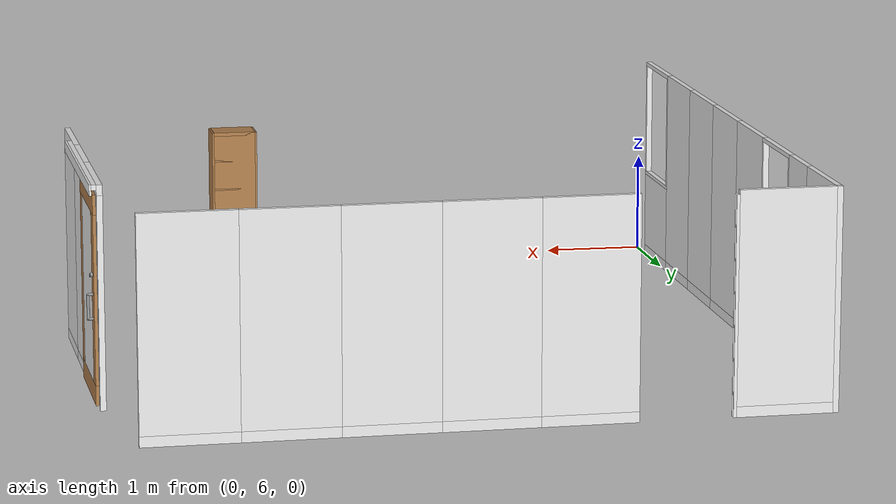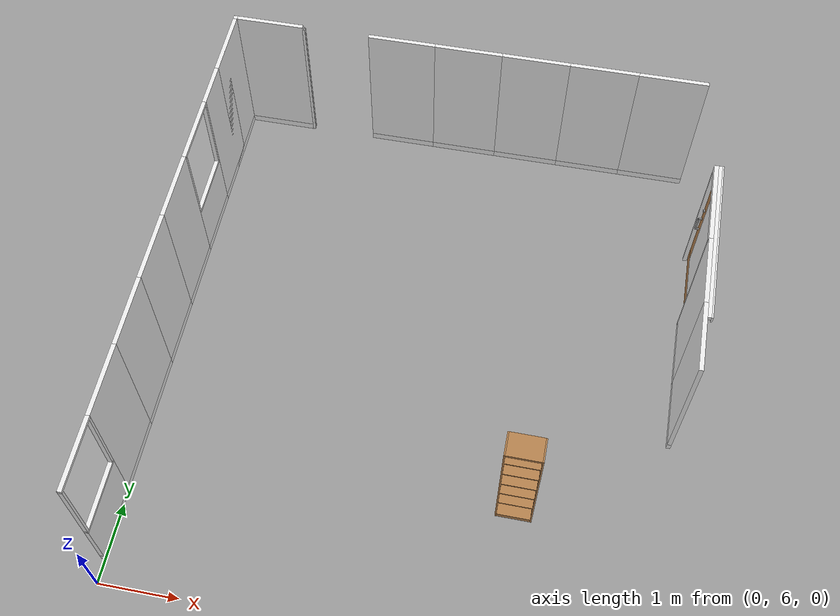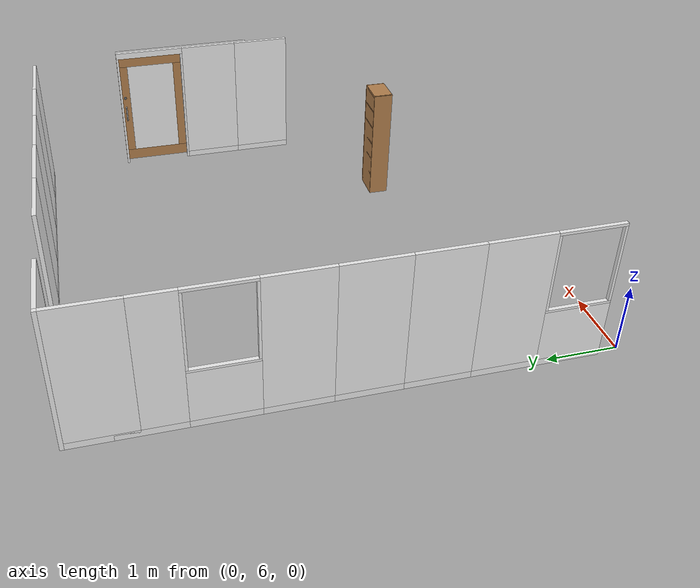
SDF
<sdf version="1.4">
 <world name="apartment">
  <model name="wall_x00y08">
   <link name="link">
    <inertial>
     <mass>50</mass>
     <inertia><ixx>1</ixx><ixy>0</ixy><ixz>0</ixz><iyy>1</iyy><iyz>0</iyz><izz>1</izz></inertia>
    </inertial>
    <visual name="bottom_frame">
     <pose>0 0 0.05 0 -0 0</pose>
     <geometry><box><size>0.055 0.9 0.1</size></box></geometry>
     <material>
      <script><uri>model://base_materials/color/scripts</uri><name>hsr_color/white</name></script>
     </material>
    </visual>
    <collision name="collision_bottom_frame">
     <pose>0 0 0.05 0 -0 0</pose>
     <geometry><box><size>0.055 0.9 0.1</size></box></geometry>
    </collision>
    <visual name="wall">
     <pose>0 0 0.4875 0 -0 0</pose>
     <geometry><box><size>0.055 0.9 0.775</size></box></geometry>
     <material>
      <script>
       <uri>model://base_materials/wall/scripts</uri>
       <uri>model://base_materials/wall/textures</uri>
       <name>wall/white_noise</name>
      </script>
     </material>
    </visual>
    <collision name="collision_wall">
     <pose>0 0 0.4875 0 -0 0</pose>
     <geometry><box><size>0.055 0.9 0.775</size></box></geometry>
    </collision>
    <visual name="center_frame">
     <pose>0 0 0.8925 0 -0 0</pose>
     <geometry><box><size>0.055 0.9 0.035</size></box></geometry>
     <material>
      <script><uri>model://base_materials/color/scripts</uri><name>hsr_color/white</name></script>
     </material>
    </visual>
    <collision name="collision_center_frame">
     <pose>0 0 0.8925 0 -0 0</pose>
     <geometry><box><size>0.055 0.9 0.035</size></box></geometry>
    </collision>
    <visual name="right_frame">
     <pose>0 0.4325 1.48 0 -0 0</pose>
     <geometry><box><size>0.055 0.035 1.14</size></box></geometry>
     <material>
      <script><uri>model://base_materials/color/scripts</uri><name>hsr_color/white</name></script>
     </material>
    </visual>
    <collision name="collision_right_frame">
     <pose>0 0.4325 1.48 0 -0 0</pose>
     <geometry><box><size>0.055 0.035 1.14</size></box></geometry>
    </collision>
    <visual name="left_frame">
     <pose>0 -0.4325 1.48 0 -0 0</pose>
     <geometry><box><size>0.055 0.035 1.14</size></box></geometry>
     <material>
      <script><uri>model://base_materials/color/scripts</uri><name>hsr_color/white</name></script>
     </material>
    </visual>
    <collision name="collision_left_frame">
     <pose>0 -0.4325 1.48 0 -0 0</pose>
     <geometry><box><size>0.055 0.035 1.14</size></box></geometry>
    </collision>
    <visual name="top_frame">
     <pose>0 0 2.07 0 -0 0</pose>
     <geometry><box><size>0.055 0.9 0.04</size></box></geometry>
     <material>
      <script><uri>model://base_materials/color/scripts</uri><name>hsr_color/white</name></script>
     </material>
    </visual>
    <collision name="collision_top_frame">
     <pose>0 0 2.07 0 -0 0</pose>
     <geometry><box><size>0.055 0.9 0.04</size></box></geometry>
    </collision>
    <velocity_decay><linear>0</linear><angular>0</angular></velocity_decay>
   </link>
   <static>1</static>
   <pose>-0.0275 6.75 0 0 -0 0</pose>
  </model>
  <model name="wall_x00y09">
   <link name="link">
    <inertial>
     <mass>50</mass>
     <inertia><ixx>1</ixx><ixy>0</ixy><ixz>0</ixz><iyy>1</iyy><iyz>0</iyz><izz>1</izz></inertia>
    </inertial>
    <visual name="bottom_frame">
     <pose>0 0 0.05 0 -0 0</pose>
     <geometry><box><size>0.055 0.9 0.1</size></box></geometry>
     <material>
      <script><uri>model://base_materials/color/scripts</uri><name>hsr_color/white</name></script>
     </material>
    </visual>
    <collision name="collision_bottom_frame">
     <pose>0 0 0.05 0 -0 0</pose>
     <geometry><box><size>0.055 0.9 0.1</size></box></geometry>
    </collision>
    <visual name="wall">
     <pose>0 0 1.095 0 -0 0</pose>
     <geometry><box><size>0.055 0.9 1.99</size></box></geometry>
     <material>
      <script>
       <uri>model://base_materials/wall/scripts</uri>
       <uri>model://base_materials/wall/textures</uri>
       <name>wall/white_noise</name>
      </script>
     </material>
    </visual>
    <collision name="collision_wall">
     <pose>0 0 1.095 0 -0 0</pose>
     <geometry><box><size>0.055 0.9 1.99</size></box></geometry>
    </collision>
    <velocity_decay><linear>0</linear><angular>0</angular></velocity_decay>
   </link>
   <static>1</static>
   <pose>-0.0275 7.65 0 0 -0 0</pose>
  </model>
  <model name="wall_x00y10">
   <link name="link">
    <inertial>
     <mass>50</mass>
     <inertia><ixx>1</ixx><ixy>0</ixy><ixz>0</ixz><iyy>1</iyy><iyz>0</iyz><izz>1</izz></inertia>
    </inertial>
    <visual name="bottom_frame">
     <pose>0 0 0.05 0 -0 0</pose>
     <geometry><box><size>0.055 0.9 0.1</size></box></geometry>
     <material>
      <script><uri>model://base_materials/color/scripts</uri><name>hsr_color/white</name></script>
     </material>
    </visual>
    <collision name="collision_bottom_frame">
     <pose>0 0 0.05 0 -0 0</pose>
     <geometry><box><size>0.055 0.9 0.1</size></box></geometry>
    </collision>
    <visual name="wall">
     <pose>0 0 1.095 0 -0 0</pose>
     <geometry><box><size>0.055 0.9 1.99</size></box></geometry>
     <material>
      <script>
       <uri>model://base_materials/wall/scripts</uri>
       <uri>model://base_materials/wall/textures</uri>
       <name>wall/white_noise</name>
      </script>
     </material>
    </visual>
    <collision name="collision_wall">
     <pose>0 0 1.095 0 -0 0</pose>
     <geometry><box><size>0.055 0.9 1.99</size></box></geometry>
    </collision>
    <velocity_decay><linear>0</linear><angular>0</angular></velocity_decay>
   </link>
   <static>1</static>
   <pose>-0.0275 8.55 0 0 -0 0</pose>
  </model>
  <model name="wall_x00y11">
   <link name="link">
    <inertial>
     <mass>50</mass>
     <inertia><ixx>1</ixx><ixy>0</ixy><ixz>0</ixz><iyy>1</iyy><iyz>0</iyz><izz>1</izz></inertia>
    </inertial>
    <visual name="bottom_frame">
     <pose>0 0 0.05 0 -0 0</pose>
     <geometry><box><size>0.055 0.9 0.1</size></box></geometry>
     <material>
      <script><uri>model://base_materials/color/scripts</uri><name>hsr_color/white</name></script>
     </material>
    </visual>
    <collision name="collision_bottom_frame">
     <pose>0 0 0.05 0 -0 0</pose>
     <geometry><box><size>0.055 0.9 0.1</size></box></geometry>
    </collision>
    <visual name="wall">
     <pose>0 0 1.095 0 -0 0</pose>
     <geometry><box><size>0.055 0.9 1.99</size></box></geometry>
     <material>
      <script>
       <uri>model://base_materials/wall/scripts</uri>
       <uri>model://base_materials/wall/textures</uri>
       <name>wall/white_noise</name>
      </script>
     </material>
    </visual>
    <collision name="collision_wall">
     <pose>0 0 1.095 0 -0 0</pose>
     <geometry><box><size>0.055 0.9 1.99</size></box></geometry>
    </collision>
    <velocity_decay><linear>0</linear><angular>0</angular></velocity_decay>
   </link>
   <static>1</static>
   <pose>-0.0275 9.45 0 0 -0 0</pose>
  </model>
  <model name="wall_x00y12">
   <link name="link">
    <inertial>
     <mass>50</mass>
     <inertia><ixx>1</ixx><ixy>0</ixy><ixz>0</ixz><iyy>1</iyy><iyz>0</iyz><izz>1</izz></inertia>
    </inertial>
    <visual name="bottom_frame">
     <pose>0 0 0.05 0 -0 0</pose>
     <geometry><box><size>0.055 0.9 0.1</size></box></geometry>
     <material>
      <script><uri>model://base_materials/color/scripts</uri><name>hsr_color/white</name></script>
     </material>
    </visual>
    <collision name="collision_bottom_frame">
     <pose>0 0 0.05 0 -0 0</pose>
     <geometry><box><size>0.055 0.9 0.1</size></box></geometry>
    </collision>
    <visual name="wall">
     <pose>0 0 1.095 0 -0 0</pose>
     <geometry><box><size>0.055 0.9 1.99</size></box></geometry>
     <material>
      <script>
       <uri>model://base_materials/wall/scripts</uri>
       <uri>model://base_materials/wall/textures</uri>
       <name>wall/white_noise</name>
      </script>
     </material>
    </visual>
    <collision name="collision_wall">
     <pose>0 0 1.095 0 -0 0</pose>
     <geometry><box><size>0.055 0.9 1.99</size></box></geometry>
    </collision>
    <velocity_decay><linear>0</linear><angular>0</angular></velocity_decay>
   </link>
   <static>1</static>
   <pose>-0.0275 10.35 0 0 -0 0</pose>
  </model>
  <model name="wall_x00y13">
   <link name="link">
    <inertial>
     <mass>50</mass>
     <inertia><ixx>1</ixx><ixy>0</ixy><ixz>0</ixz><iyy>1</iyy><iyz>0</iyz><izz>1</izz></inertia>
    </inertial>
    <visual name="bottom_frame">
     <pose>0 0 0.05 0 -0 0</pose>
     <geometry><box><size>0.055 0.9 0.1</size></box></geometry>
     <material>
      <script><uri>model://base_materials/color/scripts</uri><name>hsr_color/white</name></script>
     </material>
    </visual>
    <collision name="collision_bottom_frame">
     <pose>0 0 0.05 0 -0 0</pose>
     <geometry><box><size>0.055 0.9 0.1</size></box></geometry>
    </collision>
    <visual name="wall">
     <pose>0 0 0.4875 0 -0 0</pose>
     <geometry><box><size>0.055 0.9 0.775</size></box></geometry>
     <material>
      <script>
       <uri>model://base_materials/wall/scripts</uri>
       <uri>model://base_materials/wall/textures</uri>
       <name>wall/white_noise</name>
      </script>
     </material>
    </visual>
    <collision name="collision_wall">
     <pose>0 0 0.4875 0 -0 0</pose>
     <geometry><box><size>0.055 0.9 0.775</size></box></geometry>
    </collision>
    <visual name="center_frame">
     <pose>0 0 0.8925 0 -0 0</pose>
     <geometry><box><size>0.055 0.9 0.035</size></box></geometry>
     <material>
      <script><uri>model://base_materials/color/scripts</uri><name>hsr_color/white</name></script>
     </material>
    </visual>
    <collision name="collision_center_frame">
     <pose>0 0 0.8925 0 -0 0</pose>
     <geometry><box><size>0.055 0.9 0.035</size></box></geometry>
    </collision>
    <visual name="right_frame">
     <pose>0 0.4325 1.48 0 -0 0</pose>
     <geometry><box><size>0.055 0.035 1.14</size></box></geometry>
     <material>
      <script><uri>model://base_materials/color/scripts</uri><name>hsr_color/white</name></script>
     </material>
    </visual>
    <collision name="collision_right_frame">
     <pose>0 0.4325 1.48 0 -0 0</pose>
     <geometry><box><size>0.055 0.035 1.14</size></box></geometry>
    </collision>
    <visual name="left_frame">
     <pose>0 -0.4325 1.48 0 -0 0</pose>
     <geometry><box><size>0.055 0.035 1.14</size></box></geometry>
     <material>
      <script><uri>model://base_materials/color/scripts</uri><name>hsr_color/white</name></script>
     </material>
    </visual>
    <collision name="collision_left_frame">
     <pose>0 -0.4325 1.48 0 -0 0</pose>
     <geometry><box><size>0.055 0.035 1.14</size></box></geometry>
    </collision>
    <visual name="top_frame">
     <pose>0 0 2.07 0 -0 0</pose>
     <geometry><box><size>0.055 0.9 0.04</size></box></geometry>
     <material>
      <script><uri>model://base_materials/color/scripts</uri><name>hsr_color/white</name></script>
     </material>
    </visual>
    <collision name="collision_top_frame">
     <pose>0 0 2.07 0 -0 0</pose>
     <geometry><box><size>0.055 0.9 0.04</size></box></geometry>
    </collision>
    <velocity_decay><linear>0</linear><angular>0</angular></velocity_decay>
   </link>
   <static>1</static>
   <pose>-0.0275 11.25 0 0 -0 0</pose>
  </model>
  <model name="wall_x00y14">
   <link name="link">
    <inertial>
     <mass>50</mass>
     <inertia><ixx>1</ixx><ixy>0</ixy><ixz>0</ixz><iyy>1</iyy><iyz>0</iyz><izz>1</izz></inertia>
    </inertial>
    <visual name="bottom_frame">
     <pose>0 0 0.05 0 -0 0</pose>
     <geometry><box><size>0.055 0.9 0.1</size></box></geometry>
     <material>
      <script><uri>model://base_materials/color/scripts</uri><name>hsr_color/white</name></script>
     </material>
    </visual>
    <collision name="collision_bottom_frame">
     <pose>0 0 0.05 0 -0 0</pose>
     <geometry><box><size>0.055 0.9 0.1</size></box></geometry>
    </collision>
    <visual name="wall">
     <pose>0 0 1.095 0 -0 0</pose>
     <geometry><box><size>0.055 0.9 1.99</size></box></geometry>
     <material>
      <script>
       <uri>model://base_materials/wall/scripts</uri>
       <uri>model://base_materials/wall/textures</uri>
       <name>wall/white_noise</name>
      </script>
     </material>
    </visual>
    <collision name="collision_wall">
     <pose>0 0 1.095 0 -0 0</pose>
     <geometry><box><size>0.055 0.9 1.99</size></box></geometry>
    </collision>
    <velocity_decay><linear>0</linear><angular>0</angular></velocity_decay>
   </link>
   <static>1</static>
   <pose>-0.0275 12.15 0 0 -0 0</pose>
  </model>
  <model name="wall_x00y15">
   <link name="link">
    <inertial>
     <mass>50</mass>
     <inertia><ixx>1</ixx><ixy>0</ixy><ixz>0</ixz><iyy>1</iyy><iyz>0</iyz><izz>1</izz></inertia>
    </inertial>
    <visual name="bottom_frame">
     <pose>0 0 0.05 0 -0 0</pose>
     <geometry><box><size>0.055 0.9 0.1</size></box></geometry>
     <material>
      <script><uri>model://base_materials/color/scripts</uri><name>hsr_color/white</name></script>
     </material>
    </visual>
    <collision name="collision_bottom_frame">
     <pose>0 0 0.05 0 -0 0</pose>
     <geometry><box><size>0.055 0.9 0.1</size></box></geometry>
    </collision>
    <visual name="wall">
     <pose>0 0 1.095 0 -0 0</pose>
     <geometry><box><size>0.055 0.9 1.99</size></box></geometry>
     <material>
      <script>
       <uri>model://base_materials/wall/scripts</uri>
       <uri>model://base_materials/wall/textures</uri>
       <name>wall/white_noise</name>
      </script>
     </material>
    </visual>
    <collision name="collision_wall">
     <pose>0 0 1.095 0 -0 0</pose>
     <geometry><box><size>0.055 0.9 1.99</size></box></geometry>
    </collision>
    <velocity_decay><linear>0</linear><angular>0</angular></velocity_decay>
   </link>
   <static>1</static>
   <pose>-0.0275 12.73 0 0 -0 0</pose>
  </model>
  <model name="wall_x00y16">
   <link name="link">
    <inertial>
     <mass>50</mass>
     <inertia><ixx>1</ixx><ixy>0</ixy><ixz>0</ixz><iyy>1</iyy><iyz>0</iyz><izz>1</izz></inertia>
    </inertial>
    <visual name="_frame">
     <pose>0 0 1.045 0 -0 0</pose>
     <geometry><box><size>0.055 0.055 2.09</size></box></geometry>
     <material>
      <script><uri>model://base_materials/color/scripts</uri><name>hsr_color/white</name></script>
     </material>
    </visual>
    <collision name="collision_frame">
     <pose>0 0 1.045 0 -0 0</pose>
     <geometry><box><size>0.055 0.055 2.09</size></box></geometry>
    </collision>
    <velocity_decay><linear>0</linear><angular>0</angular></velocity_decay>
   </link>
   <static>1</static>
   <pose>-0.0275 13.2075 0 0 -0 0</pose>
  </model>
  <model name="wall_x01y16">
   <link name="link">
    <inertial>
     <mass>50</mass>
     <inertia><ixx>1</ixx><ixy>0</ixy><ixz>0</ixz><iyy>1</iyy><iyz>0</iyz><izz>1</izz></inertia>
    </inertial>
    <visual name="bottom_frame">
     <pose>0 0 0.05 0 -0 0</pose>
     <geometry><box><size>0.055 0.9 0.1</size></box></geometry>
     <material>
      <script><uri>model://base_materials/color/scripts</uri><name>hsr_color/white</name></script>
     </material>
    </visual>
    <collision name="collision_bottom_frame">
     <pose>0 0 0.05 0 -0 0</pose>
     <geometry><box><size>0.055 0.9 0.1</size></box></geometry>
    </collision>
    <visual name="wall">
     <pose>0 0 1.095 0 -0 0</pose>
     <geometry><box><size>0.055 0.9 1.99</size></box></geometry>
     <material>
      <script>
       <uri>model://base_materials/wall/scripts</uri>
       <uri>model://base_materials/wall/textures</uri>
       <name>wall/white_noise</name>
      </script>
     </material>
    </visual>
    <collision name="collision_wall">
     <pose>0 0 1.095 0 -0 0</pose>
     <geometry><box><size>0.055 0.9 1.99</size></box></geometry>
    </collision>
    <velocity_decay><linear>0</linear><angular>0</angular></velocity_decay>
   </link>
   <static>1</static>
   <pose>0.45 13.2075 0 0 -0 1.5708</pose>
  </model>
  <model name="door_stopper_x02y16">
   <link name="door_frame">
    <visual name="stopper">
     <pose>0.0225 0.0175 1.025 0 -0 0</pose>
     <geometry><box><size>0.01 0.035 2.05</size></box></geometry>
     <material>
      <script><uri>model://base_materials/color/scripts</uri><name>hsr_color/white</name></script>
     </material>
    </visual>
    <collision name="collision_frame_1">
     <pose>0.0225 0.0175 1.025 0 -0 0</pose>
     <geometry><box><size>0.01 0.035 2.05</size></box></geometry>
    </collision>
    <visual name="frame_2">
     <pose>-0.0225 0.0175 1.025 0 -0 0</pose>
     <geometry><box><size>0.01 0.035 2.05</size></box></geometry>
     <material>
      <script><uri>model://base_materials/color/scripts</uri><name>hsr_color/white</name></script>
     </material>
    </visual>
    <collision name="collision_frame_2">
     <pose>-0.0225 0.0175 1.025 0 -0 0</pose>
     <geometry><box><size>0.01 0.035 2.05</size></box></geometry>
    </collision>
    <velocity_decay><linear>0</linear><angular>0</angular></velocity_decay>
   </link>
   <static>1</static>
   <pose>0.93 13.2075 0 0 -0 1.5708</pose>
  </model>
  <model name="wall_x03y16">
   <link name="link">
    <inertial>
     <mass>50</mass>
     <inertia><ixx>1</ixx><ixy>0</ixy><ixz>0</ixz><iyy>1</iyy><iyz>0</iyz><izz>1</izz></inertia>
    </inertial>
    <visual name="bottom_frame">
     <pose>0 0 0.05 0 -0 0</pose>
     <geometry><box><size>0.055 0.9 0.1</size></box></geometry>
     <material>
      <script><uri>model://base_materials/color/scripts</uri><name>hsr_color/white</name></script>
     </material>
    </visual>
    <collision name="collision_bottom_frame">
     <pose>0 0 0.05 0 -0 0</pose>
     <geometry><box><size>0.055 0.9 0.1</size></box></geometry>
    </collision>
    <visual name="wall">
     <pose>0 0 1.095 0 -0 0</pose>
     <geometry><box><size>0.055 0.9 1.99</size></box></geometry>
     <material>
      <script>
       <uri>model://base_materials/wall/scripts</uri>
       <uri>model://base_materials/wall/textures</uri>
       <name>wall/white_noise</name>
      </script>
     </material>
    </visual>
    <collision name="collision_wall">
     <pose>0 0 1.095 0 -0 0</pose>
     <geometry><box><size>0.055 0.9 1.99</size></box></geometry>
    </collision>
    <velocity_decay><linear>0</linear><angular>0</angular></velocity_decay>
   </link>
   <static>1</static>
   <pose>2.25 13.2075 0 0 -0 1.5708</pose>
  </model>
  <model name="wall_x04y16">
   <link name="link">
    <inertial>
     <mass>50</mass>
     <inertia><ixx>1</ixx><ixy>0</ixy><ixz>0</ixz><iyy>1</iyy><iyz>0</iyz><izz>1</izz></inertia>
    </inertial>
    <visual name="bottom_frame">
     <pose>0 0 0.05 0 -0 0</pose>
     <geometry><box><size>0.055 0.9 0.1</size></box></geometry>
     <material>
      <script><uri>model://base_materials/color/scripts</uri><name>hsr_color/white</name></script>
     </material>
    </visual>
    <collision name="collision_bottom_frame">
     <pose>0 0 0.05 0 -0 0</pose>
     <geometry><box><size>0.055 0.9 0.1</size></box></geometry>
    </collision>
    <visual name="wall">
     <pose>0 0 1.095 0 -0 0</pose>
     <geometry><box><size>0.055 0.9 1.99</size></box></geometry>
     <material>
      <script>
       <uri>model://base_materials/wall/scripts</uri>
       <uri>model://base_materials/wall/textures</uri>
       <name>wall/white_noise</name>
      </script>
     </material>
    </visual>
    <collision name="collision_wall">
     <pose>0 0 1.095 0 -0 0</pose>
     <geometry><box><size>0.055 0.9 1.99</size></box></geometry>
    </collision>
    <velocity_decay><linear>0</linear><angular>0</angular></velocity_decay>
   </link>
   <static>1</static>
   <pose>3.15 13.2075 0 0 -0 1.5708</pose>
  </model>
  <model name="wall_x05y16">
   <link name="link">
    <inertial>
     <mass>50</mass>
     <inertia><ixx>1</ixx><ixy>0</ixy><ixz>0</ixz><iyy>1</iyy><iyz>0</iyz><izz>1</izz></inertia>
    </inertial>
    <visual name="bottom_frame">
     <pose>0 0 0.05 0 -0 0</pose>
     <geometry><box><size>0.055 0.9 0.1</size></box></geometry>
     <material>
      <script><uri>model://base_materials/color/scripts</uri><name>hsr_color/white</name></script>
     </material>
    </visual>
    <collision name="collision_bottom_frame">
     <pose>0 0 0.05 0 -0 0</pose>
     <geometry><box><size>0.055 0.9 0.1</size></box></geometry>
    </collision>
    <visual name="wall">
     <pose>0 0 1.095 0 -0 0</pose>
     <geometry><box><size>0.055 0.9 1.99</size></box></geometry>
     <material>
      <script>
       <uri>model://base_materials/wall/scripts</uri>
       <uri>model://base_materials/wall/textures</uri>
       <name>wall/white_noise</name>
      </script>
     </material>
    </visual>
    <collision name="collision_wall">
     <pose>0 0 1.095 0 -0 0</pose>
     <geometry><box><size>0.055 0.9 1.99</size></box></geometry>
    </collision>
    <velocity_decay><linear>0</linear><angular>0</angular></velocity_decay>
   </link>
   <static>1</static>
   <pose>4.05 13.2075 0 0 -0 1.5708</pose>
  </model>
  <model name="wall_x06y16">
   <link name="link">
    <inertial>
     <mass>50</mass>
     <inertia><ixx>1</ixx><ixy>0</ixy><ixz>0</ixz><iyy>1</iyy><iyz>0</iyz><izz>1</izz></inertia>
    </inertial>
    <visual name="bottom_frame">
     <pose>0 0 0.05 0 -0 0</pose>
     <geometry><box><size>0.055 0.9 0.1</size></box></geometry>
     <material>
      <script><uri>model://base_materials/color/scripts</uri><name>hsr_color/white</name></script>
     </material>
    </visual>
    <collision name="collision_bottom_frame">
     <pose>0 0 0.05 0 -0 0</pose>
     <geometry><box><size>0.055 0.9 0.1</size></box></geometry>
    </collision>
    <visual name="wall">
     <pose>0 0 1.095 0 -0 0</pose>
     <geometry><box><size>0.055 0.9 1.99</size></box></geometry>
     <material>
      <script>
       <uri>model://base_materials/wall/scripts</uri>
       <uri>model://base_materials/wall/textures</uri>
       <name>wall/white_noise</name>
      </script>
     </material>
    </visual>
    <collision name="collision_wall">
     <pose>0 0 1.095 0 -0 0</pose>
     <geometry><box><size>0.055 0.9 1.99</size></box></geometry>
    </collision>
    <velocity_decay><linear>0</linear><angular>0</angular></velocity_decay>
   </link>
   <static>1</static>
   <pose>4.95 13.2075 0 0 -0 1.5708</pose>
  </model>
  <model name="wall_x07y16">
   <link name="link">
    <inertial>
     <mass>50</mass>
     <inertia><ixx>1</ixx><ixy>0</ixy><ixz>0</ixz><iyy>1</iyy><iyz>0</iyz><izz>1</izz></inertia>
    </inertial>
    <visual name="bottom_frame">
     <pose>0 0 0.05 0 -0 0</pose>
     <geometry><box><size>0.055 0.9 0.1</size></box></geometry>
     <material>
      <script><uri>model://base_materials/color/scripts</uri><name>hsr_color/white</name></script>
     </material>
    </visual>
    <collision name="collision_bottom_frame">
     <pose>0 0 0.05 0 -0 0</pose>
     <geometry><box><size>0.055 0.9 0.1</size></box></geometry>
    </collision>
    <visual name="wall">
     <pose>0 0 1.095 0 -0 0</pose>
     <geometry><box><size>0.055 0.9 1.99</size></box></geometry>
     <material>
      <script>
       <uri>model://base_materials/wall/scripts</uri>
       <uri>model://base_materials/wall/textures</uri>
       <name>wall/white_noise</name>
      </script>
     </material>
    </visual>
    <collision name="collision_wall">
     <pose>0 0 1.095 0 -0 0</pose>
     <geometry><box><size>0.055 0.9 1.99</size></box></geometry>
    </collision>
    <velocity_decay><linear>0</linear><angular>0</angular></velocity_decay>
   </link>
   <static>1</static>
   <pose>5.85 13.2075 0 0 -0 1.5708</pose>
  </model>
  <model name="wall_x08y11">
   <link name="link">
    <inertial>
     <mass>50</mass>
     <inertia><ixx>1</ixx><ixy>0</ixy><ixz>0</ixz><iyy>1</iyy><iyz>0</iyz><izz>1</izz></inertia>
    </inertial>
    <visual name="bottom_frame">
     <pose>0 0 0.05 0 -0 0</pose>
     <geometry><box><size>0.055 0.9 0.1</size></box></geometry>
     <material>
      <script><uri>model://base_materials/color/scripts</uri><name>hsr_color/white</name></script>
     </material>
    </visual>
    <collision name="collision_bottom_frame">
     <pose>0 0 0.05 0 -0 0</pose>
     <geometry><box><size>0.055 0.9 0.1</size></box></geometry>
    </collision>
    <visual name="wall">
     <pose>0 0 1.095 0 -0 0</pose>
     <geometry><box><size>0.055 0.9 1.99</size></box></geometry>
     <material>
      <script>
       <uri>model://base_materials/wall/scripts</uri>
       <uri>model://base_materials/wall/textures</uri>
       <name>wall/white_noise</name>
      </script>
     </material>
    </visual>
    <collision name="collision_wall">
     <pose>0 0 1.095 0 -0 0</pose>
     <geometry><box><size>0.055 0.9 1.99</size></box></geometry>
    </collision>
    <velocity_decay><linear>0</linear><angular>0</angular></velocity_decay>
   </link>
   <static>1</static>
   <pose>6.47 9.45 0 0 -0 0</pose>
  </model>
  <model name="wall_x08y12">
   <link name="link">
    <inertial>
     <mass>50</mass>
     <inertia><ixx>1</ixx><ixy>0</ixy><ixz>0</ixz><iyy>1</iyy><iyz>0</iyz><izz>1</izz></inertia>
    </inertial>
    <visual name="bottom_frame">
     <pose>0 0 0.05 0 -0 0</pose>
     <geometry><box><size>0.055 0.9 0.1</size></box></geometry>
     <material>
      <script><uri>model://base_materials/color/scripts</uri><name>hsr_color/white</name></script>
     </material>
    </visual>
    <collision name="collision_bottom_frame">
     <pose>0 0 0.05 0 -0 0</pose>
     <geometry><box><size>0.055 0.9 0.1</size></box></geometry>
    </collision>
    <visual name="wall">
     <pose>0 0 1.095 0 -0 0</pose>
     <geometry><box><size>0.055 0.9 1.99</size></box></geometry>
     <material>
      <script>
       <uri>model://base_materials/wall/scripts</uri>
       <uri>model://base_materials/wall/textures</uri>
       <name>wall/white_noise</name>
      </script>
     </material>
    </visual>
    <collision name="collision_wall">
     <pose>0 0 1.095 0 -0 0</pose>
     <geometry><box><size>0.055 0.9 1.99</size></box></geometry>
    </collision>
    <velocity_decay><linear>0</linear><angular>0</angular></velocity_decay>
   </link>
   <static>1</static>
   <pose>6.47 10.35 0 0 -0 0</pose>
  </model>
  <model name="door_x08y13">
   <joint name="frame_to_world_joint" type="revolute">
    <parent>world</parent>
    <child>frame</child>
    <axis><xyz>0 0 1</xyz><limit><upper>0</upper><lower>0</lower></limit></axis>
   </joint>
   <link name="frame">
    <inertial>
     <mass>50</mass>
     <inertia><ixx>1</ixx><ixy>0</ixy><ixz>0</ixz><iyy>1</iyy><iyz>0</iyz><izz>1</izz></inertia>
    </inertial>
    <visual name="right_frame">
     <pose>0 0.5325 0.995 0 -0 0</pose>
     <geometry><box><size>0.055 0.035 1.99</size></box></geometry>
     <material>
      <script><uri>model://base_materials/color/scripts</uri><name>hsr_color/white</name></script>
     </material>
    </visual>
    <collision name="collision_right_frame">
     <pose>0 0.5325 0.995 0 -0 0</pose>
     <geometry><box><size>0.055 0.035 1.99</size></box></geometry>
    </collision>
    <visual name="left_frame">
     <pose>0 -0.5325 0.995 0 -0 0</pose>
     <geometry><box><size>0.055 0.035 1.99</size></box></geometry>
     <material>
      <script><uri>model://base_materials/color/scripts</uri><name>hsr_color/white</name></script>
     </material>
    </visual>
    <collision name="collision_left_frame">
     <pose>0 -0.5325 0.995 0 -0 0</pose>
     <geometry><box><size>0.055 0.035 1.99</size></box></geometry>
    </collision>
    <visual name="top_frame">
     <pose>0 0 2.04 0 -0 0</pose>
     <geometry><box><size>0.055 1.1 0.1</size></box></geometry>
     <material>
      <script><uri>model://base_materials/color/scripts</uri><name>hsr_color/white</name></script>
     </material>
    </visual>
    <collision name="collision_top_frame">
     <pose>0 0 2.04 0 -0 0</pose>
     <geometry><box><size>0.055 1.1 0.1</size></box></geometry>
    </collision>
    <visual name="top_guard">
     <pose>0.05 -0.55 2.065 0 -0 0</pose>
     <geometry><box><size>0.045 2.2 0.05</size></box></geometry>
     <material>
      <script><uri>model://base_materials/color/scripts</uri><name>hsr_color/white</name></script>
     </material>
    </visual>
    <collision name="collision_top_guard">
     <pose>0.05 -0.55 2.065 0 -0 0</pose>
     <geometry><box><size>0.045 2.2 0.05</size></box></geometry>
    </collision>
    <visual name="front_guard">
     <pose>0.0825 -0.55 2.04 0 -0 0</pose>
     <geometry><box><size>0.02 2.2 0.1</size></box></geometry>
     <material>
      <script><uri>model://base_materials/color/scripts</uri><name>hsr_color/white</name></script>
     </material>
    </visual>
    <collision name="collision_front_guard">
     <pose>0.0825 -0.55 2.04 0 -0 0</pose>
     <geometry><box><size>0.02 2.2 0.1</size></box></geometry>
    </collision>
    <velocity_decay><linear>0</linear><angular>0</angular></velocity_decay>
   </link>
   <link name="door">
    <pose>-0.0275 0 0 0 -0 0</pose>
    <visual name="glass">
     <pose>0.0775 0 1.025 0 -0 0</pose>
     <geometry><box><size>0.03 0.77 1.58</size></box></geometry>
     <material>
      <script>
       <name>hsr_color/white_transparency1</name>
       <name>hsr_color/cornflowerblue_transparency1</name>
       <uri>__default__</uri>
      </script>
     </material>
    </visual>
    <collision name="collision_glass">
     <pose>0.0775 0 1.025 0 -0 0</pose>
     <geometry><box><size>0.03 0.77 1.58</size></box></geometry>
    </collision>
    <visual name="top_frame">
     <pose>0.0775 0 1.9075 0 -0 0</pose>
     <geometry><box><size>0.03 1.1 0.185</size></box></geometry>
     <material>
      <script><uri>model://base_materials/wood/scripts/wood.material</uri><name>base_materials/wood</name></script>
     </material>
    </visual>
    <collision name="collision_top_frame">
     <pose>0.0775 0 1.9075 0 -0 0</pose>
     <geometry><box><size>0.03 1.1 0.185</size></box></geometry>
    </collision>
    <visual name="right_frame">
     <pose>0.0775 0.4675 1.025 0 -0 0</pose>
     <geometry><box><size>0.03 0.165 1.58</size></box></geometry>
     <material>
      <script><uri>model://base_materials/wood/scripts/wood.material</uri><name>base_materials/wood</name></script>
     </material>
    </visual>
    <collision name="collision_right_frame">
     <pose>0.0775 0.4675 1.025 0 -0 0</pose>
     <geometry><box><size>0.03 0.165 1.58</size></box></geometry>
    </collision>
    <visual name="left_frame">
     <pose>0.0775 -0.4675 1.025 0 -0 0</pose>
     <geometry><box><size>0.03 0.165 1.58</size></box></geometry>
     <material>
      <script><uri>model://base_materials/wood/scripts/wood.material</uri><name>base_materials/wood</name></script>
     </material>
    </visual>
    <collision name="collision_left_frame">
     <pose>0.0775 -0.4675 1.025 0 -0 0</pose>
     <geometry><box><size>0.03 0.165 1.58</size></box></geometry>
    </collision>
    <visual name="bottom_frame">
     <pose>0.0775 0 0.1425 0 -0 0</pose>
     <geometry><box><size>0.03 1.1 0.185</size></box></geometry>
     <material>
      <script><uri>model://base_materials/wood/scripts/wood.material</uri><name>base_materials/wood</name></script>
     </material>
    </visual>
    <collision name="collision_bottom_frame">
     <pose>0.0775 0 0.1425 0 -0 0</pose>
     <geometry><box><size>0.03 1.1 0.185</size></box></geometry>
    </collision>
    <visual name="handle_top_frame">
     <pose>0.0775 0.4675 1.0675 3.14159 1.57079 3.14159</pose>
     <geometry><cylinder><radius>0.0125</radius><length>0.125</length></cylinder></geometry>
     <material>
      <script><uri>model://base_materials/color/scripts</uri><name>hsr_color/grey</name></script>
     </material>
    </visual>
    <collision name="collision_handle_top_frame">
     <pose>0.0775 0.4675 1.0675 3.14159 1.57079 3.14159</pose>
     <geometry><cylinder><radius>0.0125</radius><length>0.125</length></cylinder></geometry>
    </collision>
    <visual name="handle_bottom_frame">
     <pose>0.0775 0.4675 0.8425 3.14159 1.57079 3.14159</pose>
     <geometry><cylinder><radius>0.0125</radius><length>0.125</length></cylinder></geometry>
     <material>
      <script><uri>model://base_materials/color/scripts</uri><name>hsr_color/grey</name></script>
     </material>
    </visual>
    <collision name="collision_handle_bottom_frame">
     <pose>0.0775 0.4675 0.8425 3.14159 1.57079 3.14159</pose>
     <geometry><cylinder><radius>0.0125</radius><length>0.125</length></cylinder></geometry>
    </collision>
    <visual name="handle_front_frame">
     <pose>0.14 0.4675 0.955 0 -0 0</pose>
     <geometry><cylinder><radius>0.0125</radius><length>0.225</length></cylinder></geometry>
     <material>
      <script><uri>model://base_materials/color/scripts</uri><name>hsr_color/grey</name></script>
     </material>
    </visual>
    <collision name="collision_handle_front_frame">
     <pose>0.14 0.4675 0.955 0 -0 0</pose>
     <geometry><cylinder><radius>0.0125</radius><length>0.225</length></cylinder></geometry>
    </collision>
    <visual name="handle_back_frame">
     <pose>0.015 0.4675 0.955 0 -0 0</pose>
     <geometry><cylinder><radius>0.0125</radius><length>0.225</length></cylinder></geometry>
     <material>
      <script><uri>model://base_materials/color/scripts</uri><name>hsr_color/grey</name></script>
     </material>
    </visual>
    <collision name="collision_handle_back_frame">
     <pose>0.015 0.4675 0.955 0 -0 0</pose>
     <geometry><cylinder><radius>0.0125</radius><length>0.225</length></cylinder></geometry>
    </collision>
    <visual name="handle_front_top_corner">
     <pose>0.14 0.4675 1.0675 0 -0 0</pose>
     <geometry><sphere><radius>0.0125</radius></sphere></geometry>
     <material>
      <script><uri>model://base_materials/color/scripts</uri><name>hsr_color/grey</name></script>
     </material>
    </visual>
    <collision name="collision_handle_front_top_corner">
     <pose>0.14 0.4675 1.0675 0 -0 0</pose>
     <geometry><sphere><radius>0.0125</radius></sphere></geometry>
    </collision>
    <visual name="handle_front_bottom_corner">
     <pose>0.14 0.4675 0.8425 0 -0 0</pose>
     <geometry><sphere><radius>0.0125</radius></sphere></geometry>
     <material>
      <script><uri>model://base_materials/color/scripts</uri><name>hsr_color/grey</name></script>
     </material>
    </visual>
    <collision name="collision_handle_front_bottom_corner">
     <pose>0.14 0.4675 0.8425 0 -0 0</pose>
     <geometry><sphere><radius>0.0125</radius></sphere></geometry>
    </collision>
    <visual name="handle_back_top_corner">
     <pose>0.015 0.4675 1.0675 0 -0 0</pose>
     <geometry><sphere><radius>0.0125</radius></sphere></geometry>
     <material>
      <script><uri>model://base_materials/color/scripts</uri><name>hsr_color/grey</name></script>
     </material>
    </visual>
    <collision name="collision_handle_back_top_corner">
     <pose>0.015 0.4675 1.0675 0 -0 0</pose>
     <geometry><sphere><radius>0.0125</radius></sphere></geometry>
    </collision>
    <visual name="handle_back_bottom_corner">
     <pose>0.015 0.4675 0.8425 0 -0 0</pose>
     <geometry><sphere><radius>0.0125</radius></sphere></geometry>
     <material>
      <script><uri>model://base_materials/color/scripts</uri><name>hsr_color/grey</name></script>
     </material>
    </visual>
    <collision name="collision_handle_back_bottom_corner">
     <pose>0.015 0.4675 0.8425 0 -0 0</pose>
     <geometry><sphere><radius>0.0125</radius></sphere></geometry>
    </collision>
    <visual name="handle_lock1">
     <pose>0.0775 0.4675 1.25 3.14159 1.57079 3.14159</pose>
     <geometry><cylinder><radius>0.02</radius><length>0.08</length></cylinder></geometry>
     <material>
      <script><uri>model://base_materials/color/scripts</uri><name>hsr_color/grey</name></script>
     </material>
    </visual>
    <collision name="collision_handle_lock1">
     <pose>0.0775 0.4675 1.25 3.14159 1.57079 3.14159</pose>
     <geometry><cylinder><radius>0.02</radius><length>0.08</length></cylinder></geometry>
    </collision>
    <visual name="handle_lock2">
     <pose>0.0775 0.4675 1.25 3.14159 1.57079 3.14159</pose>
     <geometry><cylinder><radius>0.015</radius><length>0.09</length></cylinder></geometry>
     <material>
      <script><uri>model://base_materials/color/scripts</uri><name>hsr_color/grey</name></script>
     </material>
    </visual>
    <collision name="collision_handle_lock2">
     <pose>0.0775 0.4675 1.25 3.14159 1.57079 3.14159</pose>
     <geometry><cylinder><radius>0.015</radius><length>0.09</length></cylinder></geometry>
    </collision>
    <velocity_decay><linear>0</linear><angular>0</angular></velocity_decay>
    <inertial>
     <inertia><ixx>1</ixx><ixy>0</ixy><ixz>0</ixz><iyy>1</iyy><iyz>0</iyz><izz>1</izz></inertia>
     <mass>1</mass>
    </inertial>
   </link>
   <joint name="top_sliding_joint" type="prismatic">
    <parent>frame</parent>
    <child>door</child>
    <axis>
     <dynamics><damping>1</damping><friction>1</friction></dynamics>
     <limit><lower>-1</lower><upper>0</upper></limit>
     <xyz>0 1 0</xyz>
    </axis>
   </joint>
   <static>0</static>
   <pose>6.47 11.35 -0 -0 -0 -0</pose>
  </model>
  <model name="high_shelf05">
   <link name="link">
    <inertial>
     <mass>5</mass>
     <inertia><ixx>1</ixx><ixy>0</ixy><ixz>0</ixz><iyy>1</iyy><iyz>0</iyz><izz>1</izz></inertia>
    </inertial>
    <visual name="left_board">
     <pose>-0.1475 0.009 0.898 0 -0 0</pose>
     <geometry><box><size>0.295 0.018 1.796</size></box></geometry>
     <material>
      <script>
       <uri>model://base_materials/wood/scripts</uri>
       <uri>model://base_materials/wood/textures</uri>
       <name>base_materials/light_wood</name>
      </script>
     </material>
    </visual>
    <collision name="collision_left_board">
     <pose>-0.1475 0.009 0.898 0 -0 0</pose>
     <geometry><box><size>0.295 0.018 1.796</size></box></geometry>
    </collision>
    <visual name="right_board">
     <pose>-0.1475 0.441 0.898 0 -0 0</pose>
     <geometry><box><size>0.295 0.018 1.796</size></box></geometry>
     <material>
      <script>
       <uri>model://base_materials/wood/scripts</uri>
       <uri>model://base_materials/wood/textures</uri>
       <name>base_materials/light_wood</name>
      </script>
     </material>
    </visual>
    <collision name="collision_right_board">
     <pose>-0.1475 0.441 0.898 0 -0 0</pose>
     <geometry><box><size>0.295 0.018 1.796</size></box></geometry>
    </collision>
    <visual name="top_board">
     <pose>-0.1475 0.225 1.7825 0 -0 0</pose>
     <geometry><box><size>0.295 0.414 0.035</size></box></geometry>
     <material>
      <script>
       <uri>model://base_materials/wood/scripts</uri>
       <uri>model://base_materials/wood/textures</uri>
       <name>base_materials/light_wood</name>
      </script>
     </material>
    </visual>
    <collision name="collision_top_board">
     <pose>-0.1475 0.225 1.7825 0 -0 0</pose>
     <geometry><box><size>0.295 0.414 0.035</size></box></geometry>
    </collision>
    <visual name="1st_shelf">
     <pose>-0.162 0.225 1.51 0 -0 0</pose>
     <geometry><box><size>0.266 0.414 0.018</size></box></geometry>
     <material>
      <script>
       <uri>model://base_materials/wood/scripts</uri>
       <uri>model://base_materials/wood/textures</uri>
       <name>base_materials/light_wood</name>
      </script>
     </material>
    </visual>
    <collision name="collision_1st_shelf">
     <pose>-0.162 0.225 1.51 0 -0 0</pose>
     <geometry><box><size>0.266 0.414 0.018</size></box></geometry>
    </collision>
    <visual name="2nd_shelf">
     <pose>-0.162 0.225 1.22 0 -0 0</pose>
     <geometry><box><size>0.266 0.414 0.018</size></box></geometry>
     <material>
      <script>
       <uri>model://base_materials/wood/scripts</uri>
       <uri>model://base_materials/wood/textures</uri>
       <name>base_materials/light_wood</name>
      </script>
     </material>
    </visual>
    <collision name="collision_2nd_shelf">
     <pose>-0.162 0.225 1.22 0 -0 0</pose>
     <geometry><box><size>0.266 0.414 0.018</size></box></geometry>
    </collision>
    <visual name="3rd_shelf">
     <pose>-0.162 0.225 0.93 0 -0 0</pose>
     <geometry><box><size>0.266 0.414 0.018</size></box></geometry>
     <material>
      <script>
       <uri>model://base_materials/wood/scripts</uri>
       <uri>model://base_materials/wood/textures</uri>
       <name>base_materials/light_wood</name>
      </script>
     </material>
    </visual>
    <collision name="collision_3rd_shelf">
     <pose>-0.162 0.225 0.93 0 -0 0</pose>
     <geometry><box><size>0.266 0.414 0.018</size></box></geometry>
    </collision>
    <visual name="4th_shelf">
     <pose>-0.162 0.225 0.65 0 -0 0</pose>
     <geometry><box><size>0.266 0.414 0.018</size></box></geometry>
     <material>
      <script>
       <uri>model://base_materials/wood/scripts</uri>
       <uri>model://base_materials/wood/textures</uri>
       <name>base_materials/light_wood</name>
      </script>
     </material>
    </visual>
    <collision name="collision_4th_shelf">
     <pose>-0.162 0.225 0.65 0 -0 0</pose>
     <geometry><box><size>0.266 0.414 0.018</size></box></geometry>
    </collision>
    <visual name="5th_shelf">
     <pose>-0.162 0.225 0.36 0 -0 0</pose>
     <geometry><box><size>0.266 0.414 0.018</size></box></geometry>
     <material>
      <script>
       <uri>model://base_materials/wood/scripts</uri>
       <uri>model://base_materials/wood/textures</uri>
       <name>base_materials/light_wood</name>
      </script>
     </material>
    </visual>
    <collision name="collision_5th_shelf">
     <pose>-0.162 0.225 0.36 0 -0 0</pose>
     <geometry><box><size>0.266 0.414 0.018</size></box></geometry>
    </collision>
    <visual name="bottom_board">
     <pose>-0.1475 0.225 0.035 0 -0 0</pose>
     <geometry><box><size>0.295 0.414 0.07</size></box></geometry>
     <material>
      <script>
       <uri>model://base_materials/wood/scripts</uri>
       <uri>model://base_materials/wood/textures</uri>
       <name>base_materials/light_wood</name>
      </script>
     </material>
    </visual>
    <collision name="collision_bottom_board">
     <pose>-0.1475 0.225 0.035 0 -0 0</pose>
     <geometry><box><size>0.295 0.414 0.07</size></box></geometry>
    </collision>
    <visual name="back_board">
     <pose>-0.286 0.225 0.898 0 -0 0</pose>
     <geometry><box><size>0.018 0.414 1.796</size></box></geometry>
     <material>
      <script>
       <uri>model://base_materials/wood/scripts</uri>
       <uri>model://base_materials/wood/textures</uri>
       <name>base_materials/light_wood</name>
      </script>
     </material>
    </visual>
    <collision name="collision_back_board">
     <pose>-0.286 0.225 0.898 0 -0 0</pose>
     <geometry><box><size>0.018 0.414 1.796</size></box></geometry>
    </collision>
    <velocity_decay><linear>0</linear><angular>0</angular></velocity_decay>
   </link>
   <static>1</static>
   <pose>4.4689 7.71155 0 0 0 -1.57622</pose>
  </model>
 </world>
</sdf>
